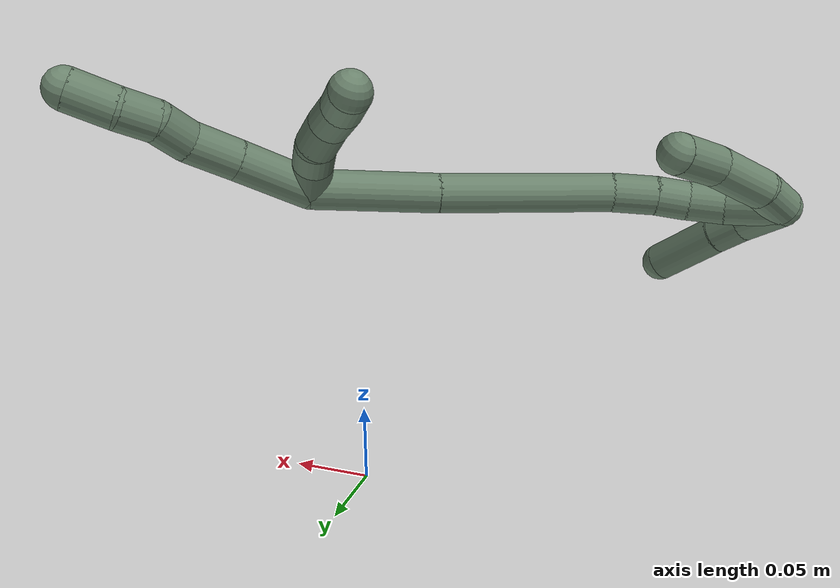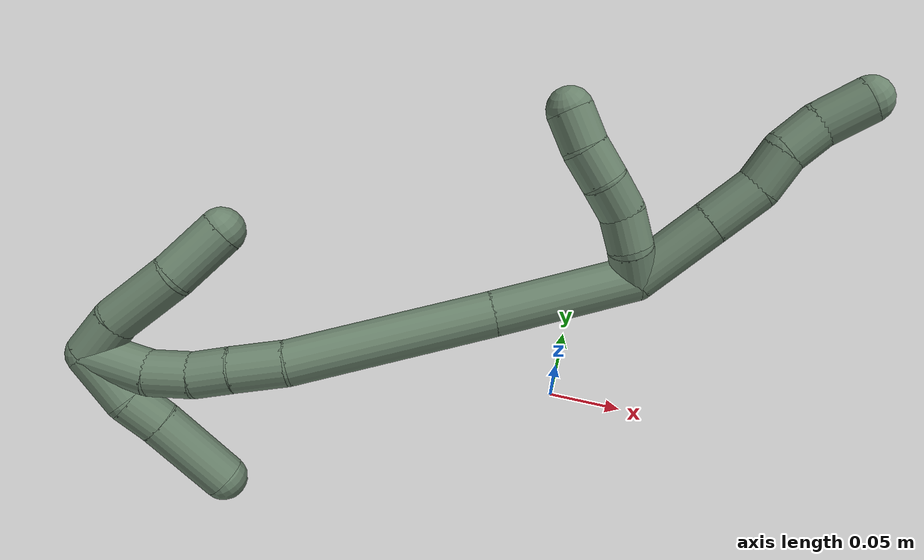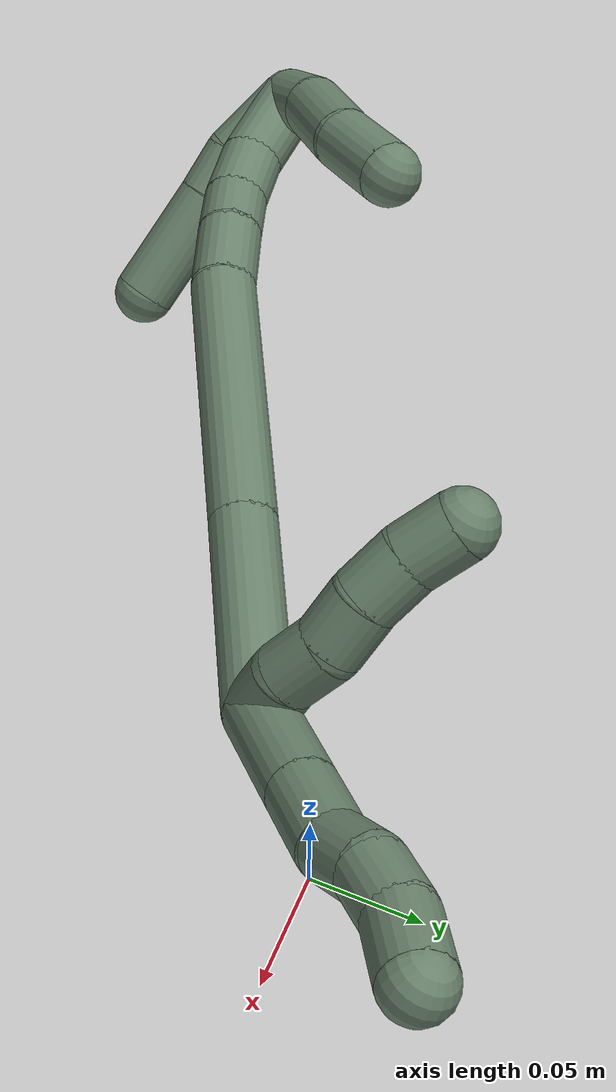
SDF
<sdf version="1.7">
 <world name="default">
  <model name="17">
   <static>0</static>
   <link name="17">
    <collision name="collision-cylinder-e_1_2_8">
     <pose>0.022762 -0.004782 0.006853 0.609284 1.21894 0.432169</pose>
     <geometry><cylinder><radius>0.0125</radius><length>0.048494</length></cylinder></geometry>
     <surface>
      <friction><ode><mu>1.16</mu><mu2>1.16</mu2><slip1>0</slip1><slip2>0</slip2></ode></friction>
      <contact><ode><kp>1e+06</kp><kd>1</kd><max_vel>0</max_vel><min_depth>0.001</min_depth></ode></contact>
     </surface>
    </collision>
    <visual name="visual-cylinder-e_1_2_8">
     <pose>0.022762 -0.004782 0.006853 0.609284 1.21894 0.432169</pose>
     <geometry><cylinder><radius>0.0125</radius><length>0.048494</length></cylinder></geometry>
     <material><ambient>0.415686 0.509804 0.423529 1</ambient></material>
    </visual>
    <collision name="collision-cylinder-e_2_8_9">
     <pose>0.059754 -0.012398 0.017864 0.59805 1.23092 0.429227</pose>
     <geometry><cylinder><radius>0.0125</radius><length>0.030189</length></cylinder></geometry>
     <surface>
      <friction><ode><mu>1.16</mu><mu2>1.16</mu2><slip1>0</slip1><slip2>0</slip2></ode></friction>
      <contact><ode><kp>1e+06</kp><kd>1</kd><max_vel>0</max_vel><min_depth>0.001</min_depth></ode></contact>
     </surface>
    </collision>
    <visual name="visual-cylinder-e_2_8_9">
     <pose>0.059754 -0.012398 0.017864 0.59805 1.23092 0.429227</pose>
     <geometry><cylinder><radius>0.0125</radius><length>0.030189</length></cylinder></geometry>
     <material><ambient>0.415686 0.509804 0.423529 1</ambient></material>
    </visual>
    <collision name="collision-cylinder-e_3_9_10">
     <pose>0.083251 -0.015956 0.028121 0.118318 0.985552 0.063585</pose>
     <geometry><cylinder><radius>0.0125</radius><length>0.022232</length></cylinder></geometry>
     <surface>
      <friction><ode><mu>1.16</mu><mu2>1.16</mu2><slip1>0</slip1><slip2>0</slip2></ode></friction>
      <contact><ode><kp>1e+06</kp><kd>1</kd><max_vel>0</max_vel><min_depth>0.001</min_depth></ode></contact>
     </surface>
    </collision>
    <visual name="visual-cylinder-e_3_9_10">
     <pose>0.083251 -0.015956 0.028121 0.118318 0.985552 0.063585</pose>
     <geometry><cylinder><radius>0.0125</radius><length>0.022232</length></cylinder></geometry>
     <material><ambient>0.415686 0.509804 0.423529 1</ambient></material>
    </visual>
    <collision name="collision-cylinder-e_4_10_11">
     <pose>0.102961 -0.018034 0.037001 0.45262 1.28273 0.340519</pose>
     <geometry><cylinder><radius>0.0125</radius><length>0.021786</length></cylinder></geometry>
     <surface>
      <friction><ode><mu>1.16</mu><mu2>1.16</mu2><slip1>0</slip1><slip2>0</slip2></ode></friction>
      <contact><ode><kp>1e+06</kp><kd>1</kd><max_vel>0</max_vel><min_depth>0.001</min_depth></ode></contact>
     </surface>
    </collision>
    <visual name="visual-cylinder-e_4_10_11">
     <pose>0.102961 -0.018034 0.037001 0.45262 1.28273 0.340519</pose>
     <geometry><cylinder><radius>0.0125</radius><length>0.021786</length></cylinder></geometry>
     <material><ambient>0.415686 0.509804 0.423529 1</ambient></material>
    </visual>
    <collision name="collision-cylinder-e_5_11_6">
     <pose>0.126082 -0.023953 0.041968 1.12463 1.19094 0.807046</pose>
     <geometry><cylinder><radius>0.0125</radius><length>0.027299</length></cylinder></geometry>
     <surface>
      <friction><ode><mu>1.16</mu><mu2>1.16</mu2><slip1>0</slip1><slip2>0</slip2></ode></friction>
      <contact><ode><kp>1e+06</kp><kd>1</kd><max_vel>0</max_vel><min_depth>0.001</min_depth></ode></contact>
     </surface>
    </collision>
    <visual name="visual-cylinder-e_5_11_6">
     <pose>0.126082 -0.023953 0.041968 1.12463 1.19094 0.807046</pose>
     <geometry><cylinder><radius>0.0125</radius><length>0.027299</length></cylinder></geometry>
     <material><ambient>0.415686 0.509804 0.423529 1</ambient></material>
    </visual>
    <collision name="collision-cylinder-e_1_2_12">
     <pose>0.001316 -0.000109 0.009912 0.010992 0.132029 0.000727</pose>
     <geometry><cylinder><radius>0.0125</radius><length>0.02</length></cylinder></geometry>
     <surface>
      <friction><ode><mu>1.16</mu><mu2>1.16</mu2><slip1>0</slip1><slip2>0</slip2></ode></friction>
      <contact><ode><kp>1e+06</kp><kd>1</kd><max_vel>0</max_vel><min_depth>0.001</min_depth></ode></contact>
     </surface>
    </collision>
    <visual name="visual-cylinder-e_1_2_12">
     <pose>0.001316 -0.000109 0.009912 0.010992 0.132029 0.000727</pose>
     <geometry><cylinder><radius>0.0125</radius><length>0.02</length></cylinder></geometry>
     <material><ambient>0.415686 0.509804 0.423529 1</ambient></material>
    </visual>
    <collision name="collision-cylinder-e_2_12_13">
     <pose>0.004546 0.002609 0.029224 -0.292175 0.192535 -0.028415</pose>
     <geometry><cylinder><radius>0.0125</radius><length>0.02</length></cylinder></geometry>
     <surface>
      <friction><ode><mu>1.16</mu><mu2>1.16</mu2><slip1>0</slip1><slip2>0</slip2></ode></friction>
      <contact><ode><kp>1e+06</kp><kd>1</kd><max_vel>0</max_vel><min_depth>0.001</min_depth></ode></contact>
     </surface>
    </collision>
    <visual name="visual-cylinder-e_2_12_13">
     <pose>0.004546 0.002609 0.029224 -0.292175 0.192535 -0.028415</pose>
     <geometry><cylinder><radius>0.0125</radius><length>0.02</length></cylinder></geometry>
     <material><ambient>0.415686 0.509804 0.423529 1</ambient></material>
    </visual>
    <collision name="collision-cylinder-e_3_13_14">
     <pose>0.005467 0.007705 0.048312 -0.229997 -0.099469 0.011499</pose>
     <geometry><cylinder><radius>0.0125</radius><length>0.02</length></cylinder></geometry>
     <surface>
      <friction><ode><mu>1.16</mu><mu2>1.16</mu2><slip1>0</slip1><slip2>0</slip2></ode></friction>
      <contact><ode><kp>1e+06</kp><kd>1</kd><max_vel>0</max_vel><min_depth>0.001</min_depth></ode></contact>
     </surface>
    </collision>
    <visual name="visual-cylinder-e_3_13_14">
     <pose>0.005467 0.007705 0.048312 -0.229997 -0.099469 0.011499</pose>
     <geometry><cylinder><radius>0.0125</radius><length>0.02</length></cylinder></geometry>
     <material><ambient>0.415686 0.509804 0.423529 1</ambient></material>
    </visual>
    <collision name="collision-cylinder-e_4_14_15">
     <pose>0.003908 0.014093 0.067095 -0.425334 -0.056633 0.012232</pose>
     <geometry><cylinder><radius>0.0125</radius><length>0.02</length></cylinder></geometry>
     <surface>
      <friction><ode><mu>1.16</mu><mu2>1.16</mu2><slip1>0</slip1><slip2>0</slip2></ode></friction>
      <contact><ode><kp>1e+06</kp><kd>1</kd><max_vel>0</max_vel><min_depth>0.001</min_depth></ode></contact>
     </surface>
    </collision>
    <visual name="visual-cylinder-e_4_14_15">
     <pose>0.003908 0.014093 0.067095 -0.425334 -0.056633 0.012232</pose>
     <geometry><cylinder><radius>0.0125</radius><length>0.02</length></cylinder></geometry>
     <material><ambient>0.415686 0.509804 0.423529 1</ambient></material>
    </visual>
    <collision name="collision-cylinder-e_5_15_5">
     <pose>0.004494 0.022927 0.084932 -0.494568 0.115452 -0.029176</pose>
     <geometry><cylinder><radius>0.0125</radius><length>0.02</length></cylinder></geometry>
     <surface>
      <friction><ode><mu>1.16</mu><mu2>1.16</mu2><slip1>0</slip1><slip2>0</slip2></ode></friction>
      <contact><ode><kp>1e+06</kp><kd>1</kd><max_vel>0</max_vel><min_depth>0.001</min_depth></ode></contact>
     </surface>
    </collision>
    <visual name="visual-cylinder-e_5_15_5">
     <pose>0.004494 0.022927 0.084932 -0.494568 0.115452 -0.029176</pose>
     <geometry><cylinder><radius>0.0125</radius><length>0.02</length></cylinder></geometry>
     <material><ambient>0.415686 0.509804 0.423529 1</ambient></material>
    </visual>
    <collision name="collision-cylinder-e_1_2_16">
     <pose>-0.03784 0.009401 0.007332 -0.908429 -1.26559 0.687736</pose>
     <geometry><cylinder><radius>0.0125</radius><length>0.079347</length></cylinder></geometry>
     <surface>
      <friction><ode><mu>1.16</mu><mu2>1.16</mu2><slip1>0</slip1><slip2>0</slip2></ode></friction>
      <contact><ode><kp>1e+06</kp><kd>1</kd><max_vel>0</max_vel><min_depth>0.001</min_depth></ode></contact>
     </surface>
    </collision>
    <visual name="visual-cylinder-e_1_2_16">
     <pose>-0.03784 0.009401 0.007332 -0.908429 -1.26559 0.687736</pose>
     <geometry><cylinder><radius>0.0125</radius><length>0.079347</length></cylinder></geometry>
     <material><ambient>0.415686 0.509804 0.423529 1</ambient></material>
    </visual>
    <collision name="collision-cylinder-e_2_16_17">
     <pose>-0.128907 0.030835 0.026536 -0.792152 -1.26327 0.593805</pose>
     <geometry><cylinder><radius>0.0125</radius><length>0.111693</length></cylinder></geometry>
     <surface>
      <friction><ode><mu>1.16</mu><mu2>1.16</mu2><slip1>0</slip1><slip2>0</slip2></ode></friction>
      <contact><ode><kp>1e+06</kp><kd>1</kd><max_vel>0</max_vel><min_depth>0.001</min_depth></ode></contact>
     </surface>
    </collision>
    <visual name="visual-cylinder-e_2_16_17">
     <pose>-0.128907 0.030835 0.026536 -0.792152 -1.26327 0.593805</pose>
     <geometry><cylinder><radius>0.0125</radius><length>0.111693</length></cylinder></geometry>
     <material><ambient>0.415686 0.509804 0.423529 1</ambient></material>
    </visual>
    <collision name="collision-cylinder-e_3_17_18">
     <pose>-0.195155 0.048038 0.041854 -0.982771 -1.12566 0.651237</pose>
     <geometry><cylinder><radius>0.0125</radius><length>0.028855</length></cylinder></geometry>
     <surface>
      <friction><ode><mu>1.16</mu><mu2>1.16</mu2><slip1>0</slip1><slip2>0</slip2></ode></friction>
      <contact><ode><kp>1e+06</kp><kd>1</kd><max_vel>0</max_vel><min_depth>0.001</min_depth></ode></contact>
     </surface>
    </collision>
    <visual name="visual-cylinder-e_3_17_18">
     <pose>-0.195155 0.048038 0.041854 -0.982771 -1.12566 0.651237</pose>
     <geometry><cylinder><radius>0.0125</radius><length>0.028855</length></cylinder></geometry>
     <material><ambient>0.415686 0.509804 0.423529 1</ambient></material>
    </visual>
    <collision name="collision-cylinder-e_4_18_19">
     <pose>-0.2176 0.057589 0.047119 -1.17748 -1.10441 0.780623</pose>
     <geometry><cylinder><radius>0.0125</radius><length>0.021101</length></cylinder></geometry>
     <surface>
      <friction><ode><mu>1.16</mu><mu2>1.16</mu2><slip1>0</slip1><slip2>0</slip2></ode></friction>
      <contact><ode><kp>1e+06</kp><kd>1</kd><max_vel>0</max_vel><min_depth>0.001</min_depth></ode></contact>
     </surface>
    </collision>
    <visual name="visual-cylinder-e_4_18_19">
     <pose>-0.2176 0.057589 0.047119 -1.17748 -1.10441 0.780623</pose>
     <geometry><cylinder><radius>0.0125</radius><length>0.021101</length></cylinder></geometry>
     <material><ambient>0.415686 0.509804 0.423529 1</ambient></material>
    </visual>
    <collision name="collision-cylinder-e_5_19_20">
     <pose>-0.236736 0.067946 0.052719 -1.00647 -0.941396 0.54625</pose>
     <geometry><cylinder><radius>0.0125</radius><length>0.024028</length></cylinder></geometry>
     <surface>
      <friction><ode><mu>1.16</mu><mu2>1.16</mu2><slip1>0</slip1><slip2>0</slip2></ode></friction>
      <contact><ode><kp>1e+06</kp><kd>1</kd><max_vel>0</max_vel><min_depth>0.001</min_depth></ode></contact>
     </surface>
    </collision>
    <visual name="visual-cylinder-e_5_19_20">
     <pose>-0.236736 0.067946 0.052719 -1.00647 -0.941396 0.54625</pose>
     <geometry><cylinder><radius>0.0125</radius><length>0.024028</length></cylinder></geometry>
     <material><ambient>0.415686 0.509804 0.423529 1</ambient></material>
    </visual>
    <collision name="collision-cylinder-e_6_20_1">
     <pose>-0.257776 0.084045 0.065163 -0.863061 -0.704645 0.335419</pose>
     <geometry><cylinder><radius>0.0125</radius><length>0.034975</length></cylinder></geometry>
     <surface>
      <friction><ode><mu>1.16</mu><mu2>1.16</mu2><slip1>0</slip1><slip2>0</slip2></ode></friction>
      <contact><ode><kp>1e+06</kp><kd>1</kd><max_vel>0</max_vel><min_depth>0.001</min_depth></ode></contact>
     </surface>
    </collision>
    <visual name="visual-cylinder-e_6_20_1">
     <pose>-0.257776 0.084045 0.065163 -0.863061 -0.704645 0.335419</pose>
     <geometry><cylinder><radius>0.0125</radius><length>0.034975</length></cylinder></geometry>
     <material><ambient>0.415686 0.509804 0.423529 1</ambient></material>
    </visual>
    <collision name="collision-cylinder-e_1_1_21">
     <pose>-0.258056 0.092301 0.079416 0.322395 1.08062 0.194466</pose>
     <geometry><cylinder><radius>0.0125</radius><length>0.025044</length></cylinder></geometry>
     <surface>
      <friction><ode><mu>1.16</mu><mu2>1.16</mu2><slip1>0</slip1><slip2>0</slip2></ode></friction>
      <contact><ode><kp>1e+06</kp><kd>1</kd><max_vel>0</max_vel><min_depth>0.001</min_depth></ode></contact>
     </surface>
    </collision>
    <visual name="visual-cylinder-e_1_1_21">
     <pose>-0.258056 0.092301 0.079416 0.322395 1.08062 0.194466</pose>
     <geometry><cylinder><radius>0.0125</radius><length>0.025044</length></cylinder></geometry>
     <material><ambient>0.415686 0.509804 0.423529 1</ambient></material>
    </visual>
    <collision name="collision-cylinder-e_2_21_22">
     <pose>-0.227862 0.086035 0.090221 0.700759 1.22858 0.504548</pose>
     <geometry><cylinder><radius>0.0125</radius><length>0.040651</length></cylinder></geometry>
     <surface>
      <friction><ode><mu>1.16</mu><mu2>1.16</mu2><slip1>0</slip1><slip2>0</slip2></ode></friction>
      <contact><ode><kp>1e+06</kp><kd>1</kd><max_vel>0</max_vel><min_depth>0.001</min_depth></ode></contact>
     </surface>
    </collision>
    <visual name="visual-cylinder-e_2_21_22">
     <pose>-0.227862 0.086035 0.090221 0.700759 1.22858 0.504548</pose>
     <geometry><cylinder><radius>0.0125</radius><length>0.040651</length></cylinder></geometry>
     <material><ambient>0.415686 0.509804 0.423529 1</ambient></material>
    </visual>
    <collision name="collision-cylinder-e_3_22_4">
     <pose>-0.192094 0.081818 0.099667 -0.042786 1.32126 -0.033252</pose>
     <geometry><cylinder><radius>0.0125</radius><length>0.034305</length></cylinder></geometry>
     <surface>
      <friction><ode><mu>1.16</mu><mu2>1.16</mu2><slip1>0</slip1><slip2>0</slip2></ode></friction>
      <contact><ode><kp>1e+06</kp><kd>1</kd><max_vel>0</max_vel><min_depth>0.001</min_depth></ode></contact>
     </surface>
    </collision>
    <visual name="visual-cylinder-e_3_22_4">
     <pose>-0.192094 0.081818 0.099667 -0.042786 1.32126 -0.033252</pose>
     <geometry><cylinder><radius>0.0125</radius><length>0.034305</length></cylinder></geometry>
     <material><ambient>0.415686 0.509804 0.423529 1</ambient></material>
    </visual>
    <collision name="collision-cylinder-e_1_1_23">
     <pose>-0.267154 0.086545 0.059948 2.6392 0.122525 0.469259</pose>
     <geometry><cylinder><radius>0.0125</radius><length>0.031905</length></cylinder></geometry>
     <surface>
      <friction><ode><mu>1.16</mu><mu2>1.16</mu2><slip1>0</slip1><slip2>0</slip2></ode></friction>
      <contact><ode><kp>1e+06</kp><kd>1</kd><max_vel>0</max_vel><min_depth>0.001</min_depth></ode></contact>
     </surface>
    </collision>
    <visual name="visual-cylinder-e_1_1_23">
     <pose>-0.267154 0.086545 0.059948 2.6392 0.122525 0.469259</pose>
     <geometry><cylinder><radius>0.0125</radius><length>0.031905</length></cylinder></geometry>
     <material><ambient>0.415686 0.509804 0.423529 1</ambient></material>
    </visual>
    <collision name="collision-cylinder-e_2_23_24">
     <pose>-0.261708 0.075393 0.036935 2.77313 0.342819 1.49717</pose>
     <geometry><cylinder><radius>0.0125</radius><length>0.020799</length></cylinder></geometry>
     <surface>
      <friction><ode><mu>1.16</mu><mu2>1.16</mu2><slip1>0</slip1><slip2>0</slip2></ode></friction>
      <contact><ode><kp>1e+06</kp><kd>1</kd><max_vel>0</max_vel><min_depth>0.001</min_depth></ode></contact>
     </surface>
    </collision>
    <visual name="visual-cylinder-e_2_23_24">
     <pose>-0.261708 0.075393 0.036935 2.77313 0.342819 1.49717</pose>
     <geometry><cylinder><radius>0.0125</radius><length>0.020799</length></cylinder></geometry>
     <material><ambient>0.415686 0.509804 0.423529 1</ambient></material>
    </visual>
    <collision name="collision-cylinder-e_3_24_3">
     <pose>-0.251918 0.063744 0.006499 2.7773 0.269426 1.26876</pose>
     <geometry><cylinder><radius>0.0125</radius><length>0.047297</length></cylinder></geometry>
     <surface>
      <friction><ode><mu>1.16</mu><mu2>1.16</mu2><slip1>0</slip1><slip2>0</slip2></ode></friction>
      <contact><ode><kp>1e+06</kp><kd>1</kd><max_vel>0</max_vel><min_depth>0.001</min_depth></ode></contact>
     </surface>
    </collision>
    <visual name="visual-cylinder-e_3_24_3">
     <pose>-0.251918 0.063744 0.006499 2.7773 0.269426 1.26876</pose>
     <geometry><cylinder><radius>0.0125</radius><length>0.047297</length></cylinder></geometry>
     <material><ambient>0.415686 0.509804 0.423529 1</ambient></material>
    </visual>
    <collision name="collision-sphere-3">
     <pose>-0.245623 0.055622 -0.0148 0 -0 0</pose>
     <geometry><sphere><radius>0.0125</radius></sphere></geometry>
     <surface>
      <friction><ode><mu>1.16</mu><mu2>1.16</mu2><slip1>0</slip1><slip2>0</slip2></ode></friction>
      <contact><ode><kp>1e+06</kp><kd>1</kd><max_vel>0</max_vel><min_depth>0.001</min_depth></ode></contact>
     </surface>
    </collision>
    <visual name="visual-sphere-3">
     <pose>-0.245623 0.055622 -0.0148 0 -0 0</pose>
     <geometry><sphere><radius>0.0125</radius></sphere></geometry>
     <material><ambient>0.415686 0.509804 0.423529 1</ambient></material>
    </visual>
    <collision name="collision-sphere-24">
     <pose>-0.258213 0.071865 0.027798 0 -0 0</pose>
     <geometry><sphere><radius>0.0125</radius></sphere></geometry>
     <surface>
      <friction><ode><mu>1.16</mu><mu2>1.16</mu2><slip1>0</slip1><slip2>0</slip2></ode></friction>
      <contact><ode><kp>1e+06</kp><kd>1</kd><max_vel>0</max_vel><min_depth>0.001</min_depth></ode></contact>
     </surface>
    </collision>
    <visual name="visual-sphere-24">
     <pose>-0.258213 0.071865 0.027798 0 -0 0</pose>
     <geometry><sphere><radius>0.0125</radius></sphere></geometry>
     <material><ambient>0.415686 0.509804 0.423529 1</ambient></material>
    </visual>
    <collision name="collision-sphere-23">
     <pose>-0.265204 0.078921 0.046072 0 -0 0</pose>
     <geometry><sphere><radius>0.0125</radius></sphere></geometry>
     <surface>
      <friction><ode><mu>1.16</mu><mu2>1.16</mu2><slip1>0</slip1><slip2>0</slip2></ode></friction>
      <contact><ode><kp>1e+06</kp><kd>1</kd><max_vel>0</max_vel><min_depth>0.001</min_depth></ode></contact>
     </surface>
    </collision>
    <visual name="visual-sphere-23">
     <pose>-0.265204 0.078921 0.046072 0 -0 0</pose>
     <geometry><sphere><radius>0.0125</radius></sphere></geometry>
     <material><ambient>0.415686 0.509804 0.423529 1</ambient></material>
    </visual>
    <collision name="collision-sphere-4">
     <pose>-0.175472 0.081999 0.103899 0 -0 0</pose>
     <geometry><sphere><radius>0.0125</radius></sphere></geometry>
     <surface>
      <friction><ode><mu>1.16</mu><mu2>1.16</mu2><slip1>0</slip1><slip2>0</slip2></ode></friction>
      <contact><ode><kp>1e+06</kp><kd>1</kd><max_vel>0</max_vel><min_depth>0.001</min_depth></ode></contact>
     </surface>
    </collision>
    <visual name="visual-sphere-4">
     <pose>-0.175472 0.081999 0.103899 0 -0 0</pose>
     <geometry><sphere><radius>0.0125</radius></sphere></geometry>
     <material><ambient>0.415686 0.509804 0.423529 1</ambient></material>
    </visual>
    <collision name="collision-sphere-22">
     <pose>-0.208715 0.081637 0.095435 0 -0 0</pose>
     <geometry><sphere><radius>0.0125</radius></sphere></geometry>
     <surface>
      <friction><ode><mu>1.16</mu><mu2>1.16</mu2><slip1>0</slip1><slip2>0</slip2></ode></friction>
      <contact><ode><kp>1e+06</kp><kd>1</kd><max_vel>0</max_vel><min_depth>0.001</min_depth></ode></contact>
     </surface>
    </collision>
    <visual name="visual-sphere-22">
     <pose>-0.208715 0.081637 0.095435 0 -0 0</pose>
     <geometry><sphere><radius>0.0125</radius></sphere></geometry>
     <material><ambient>0.415686 0.509804 0.423529 1</ambient></material>
    </visual>
    <collision name="collision-sphere-21">
     <pose>-0.247008 0.090433 0.085008 0 -0 0</pose>
     <geometry><sphere><radius>0.0125</radius></sphere></geometry>
     <surface>
      <friction><ode><mu>1.16</mu><mu2>1.16</mu2><slip1>0</slip1><slip2>0</slip2></ode></friction>
      <contact><ode><kp>1e+06</kp><kd>1</kd><max_vel>0</max_vel><min_depth>0.001</min_depth></ode></contact>
     </surface>
    </collision>
    <visual name="visual-sphere-21">
     <pose>-0.247008 0.090433 0.085008 0 -0 0</pose>
     <geometry><sphere><radius>0.0125</radius></sphere></geometry>
     <material><ambient>0.415686 0.509804 0.423529 1</ambient></material>
    </visual>
    <collision name="collision-sphere-1">
     <pose>-0.269103 0.094168 0.073825 0 -0 0</pose>
     <geometry><sphere><radius>0.0125</radius></sphere></geometry>
     <surface>
      <friction><ode><mu>1.16</mu><mu2>1.16</mu2><slip1>0</slip1><slip2>0</slip2></ode></friction>
      <contact><ode><kp>1e+06</kp><kd>1</kd><max_vel>0</max_vel><min_depth>0.001</min_depth></ode></contact>
     </surface>
    </collision>
    <visual name="visual-sphere-1">
     <pose>-0.269103 0.094168 0.073825 0 -0 0</pose>
     <geometry><sphere><radius>0.0125</radius></sphere></geometry>
     <material><ambient>0.415686 0.509804 0.423529 1</ambient></material>
    </visual>
    <collision name="collision-sphere-6">
     <pose>0.138759 -0.028519 0.044152 0 -0 0</pose>
     <geometry><sphere><radius>0.0125</radius></sphere></geometry>
     <surface>
      <friction><ode><mu>1.16</mu><mu2>1.16</mu2><slip1>0</slip1><slip2>0</slip2></ode></friction>
      <contact><ode><kp>1e+06</kp><kd>1</kd><max_vel>0</max_vel><min_depth>0.001</min_depth></ode></contact>
     </surface>
    </collision>
    <visual name="visual-sphere-6">
     <pose>0.138759 -0.028519 0.044152 0 -0 0</pose>
     <geometry><sphere><radius>0.0125</radius></sphere></geometry>
     <material><ambient>0.415686 0.509804 0.423529 1</ambient></material>
    </visual>
    <collision name="collision-sphere-11">
     <pose>0.113405 -0.019387 0.039784 0 -0 0</pose>
     <geometry><sphere><radius>0.0125</radius></sphere></geometry>
     <surface>
      <friction><ode><mu>1.16</mu><mu2>1.16</mu2><slip1>0</slip1><slip2>0</slip2></ode></friction>
      <contact><ode><kp>1e+06</kp><kd>1</kd><max_vel>0</max_vel><min_depth>0.001</min_depth></ode></contact>
     </surface>
    </collision>
    <visual name="visual-sphere-11">
     <pose>0.113405 -0.019387 0.039784 0 -0 0</pose>
     <geometry><sphere><radius>0.0125</radius></sphere></geometry>
     <material><ambient>0.415686 0.509804 0.423529 1</ambient></material>
    </visual>
    <collision name="collision-sphere-10">
     <pose>0.092517 -0.016681 0.034218 0 -0 0</pose>
     <geometry><sphere><radius>0.0125</radius></sphere></geometry>
     <surface>
      <friction><ode><mu>1.16</mu><mu2>1.16</mu2><slip1>0</slip1><slip2>0</slip2></ode></friction>
      <contact><ode><kp>1e+06</kp><kd>1</kd><max_vel>0</max_vel><min_depth>0.001</min_depth></ode></contact>
     </surface>
    </collision>
    <visual name="visual-sphere-10">
     <pose>0.092517 -0.016681 0.034218 0 -0 0</pose>
     <geometry><sphere><radius>0.0125</radius></sphere></geometry>
     <material><ambient>0.415686 0.509804 0.423529 1</ambient></material>
    </visual>
    <collision name="collision-sphere-9">
     <pose>0.073985 -0.015231 0.022023 0 -0 0</pose>
     <geometry><sphere><radius>0.0125</radius></sphere></geometry>
     <surface>
      <friction><ode><mu>1.16</mu><mu2>1.16</mu2><slip1>0</slip1><slip2>0</slip2></ode></friction>
      <contact><ode><kp>1e+06</kp><kd>1</kd><max_vel>0</max_vel><min_depth>0.001</min_depth></ode></contact>
     </surface>
    </collision>
    <visual name="visual-sphere-9">
     <pose>0.073985 -0.015231 0.022023 0 -0 0</pose>
     <geometry><sphere><radius>0.0125</radius></sphere></geometry>
     <material><ambient>0.415686 0.509804 0.423529 1</ambient></material>
    </visual>
    <collision name="collision-sphere-2">
     <geometry><sphere><radius>0.0125</radius></sphere></geometry>
     <surface>
      <friction><ode><mu>1.16</mu><mu2>1.16</mu2><slip1>0</slip1><slip2>0</slip2></ode></friction>
      <contact><ode><kp>1e+06</kp><kd>1</kd><max_vel>0</max_vel><min_depth>0.001</min_depth></ode></contact>
     </surface>
    </collision>
    <visual name="visual-sphere-2">
     <geometry><sphere><radius>0.0125</radius></sphere></geometry>
     <material><ambient>0.415686 0.509804 0.423529 1</ambient></material>
    </visual>
    <collision name="collision-sphere-19">
     <pose>-0.227024 0.061971 0.048937 0 -0 0</pose>
     <geometry><sphere><radius>0.0125</radius></sphere></geometry>
     <surface>
      <friction><ode><mu>1.16</mu><mu2>1.16</mu2><slip1>0</slip1><slip2>0</slip2></ode></friction>
      <contact><ode><kp>1e+06</kp><kd>1</kd><max_vel>0</max_vel><min_depth>0.001</min_depth></ode></contact>
     </surface>
    </collision>
    <visual name="visual-sphere-19">
     <pose>-0.227024 0.061971 0.048937 0 -0 0</pose>
     <geometry><sphere><radius>0.0125</radius></sphere></geometry>
     <material><ambient>0.415686 0.509804 0.423529 1</ambient></material>
    </visual>
    <collision name="collision-sphere-8">
     <pose>0.045523 -0.009565 0.013706 0 -0 0</pose>
     <geometry><sphere><radius>0.0125</radius></sphere></geometry>
     <surface>
      <friction><ode><mu>1.16</mu><mu2>1.16</mu2><slip1>0</slip1><slip2>0</slip2></ode></friction>
      <contact><ode><kp>1e+06</kp><kd>1</kd><max_vel>0</max_vel><min_depth>0.001</min_depth></ode></contact>
     </surface>
    </collision>
    <visual name="visual-sphere-8">
     <pose>0.045523 -0.009565 0.013706 0 -0 0</pose>
     <geometry><sphere><radius>0.0125</radius></sphere></geometry>
     <material><ambient>0.415686 0.509804 0.423529 1</ambient></material>
    </visual>
    <collision name="collision-sphere-12">
     <pose>0.002633 -0.000218 0.019825 0 -0 0</pose>
     <geometry><sphere><radius>0.0125</radius></sphere></geometry>
     <surface>
      <friction><ode><mu>1.16</mu><mu2>1.16</mu2><slip1>0</slip1><slip2>0</slip2></ode></friction>
      <contact><ode><kp>1e+06</kp><kd>1</kd><max_vel>0</max_vel><min_depth>0.001</min_depth></ode></contact>
     </surface>
    </collision>
    <visual name="visual-sphere-12">
     <pose>0.002633 -0.000218 0.019825 0 -0 0</pose>
     <geometry><sphere><radius>0.0125</radius></sphere></geometry>
     <material><ambient>0.415686 0.509804 0.423529 1</ambient></material>
    </visual>
    <collision name="collision-sphere-13">
     <pose>0.00646 0.005436 0.038623 0 -0 0</pose>
     <geometry><sphere><radius>0.0125</radius></sphere></geometry>
     <surface>
      <friction><ode><mu>1.16</mu><mu2>1.16</mu2><slip1>0</slip1><slip2>0</slip2></ode></friction>
      <contact><ode><kp>1e+06</kp><kd>1</kd><max_vel>0</max_vel><min_depth>0.001</min_depth></ode></contact>
     </surface>
    </collision>
    <visual name="visual-sphere-13">
     <pose>0.00646 0.005436 0.038623 0 -0 0</pose>
     <geometry><sphere><radius>0.0125</radius></sphere></geometry>
     <material><ambient>0.415686 0.509804 0.423529 1</ambient></material>
    </visual>
    <collision name="collision-sphere-14">
     <pose>0.004474 0.009973 0.058 0 -0 0</pose>
     <geometry><sphere><radius>0.0125</radius></sphere></geometry>
     <surface>
      <friction><ode><mu>1.16</mu><mu2>1.16</mu2><slip1>0</slip1><slip2>0</slip2></ode></friction>
      <contact><ode><kp>1e+06</kp><kd>1</kd><max_vel>0</max_vel><min_depth>0.001</min_depth></ode></contact>
     </surface>
    </collision>
    <visual name="visual-sphere-14">
     <pose>0.004474 0.009973 0.058 0 -0 0</pose>
     <geometry><sphere><radius>0.0125</radius></sphere></geometry>
     <material><ambient>0.415686 0.509804 0.423529 1</ambient></material>
    </visual>
    <collision name="collision-sphere-15">
     <pose>0.003342 0.018213 0.076189 0 -0 0</pose>
     <geometry><sphere><radius>0.0125</radius></sphere></geometry>
     <surface>
      <friction><ode><mu>1.16</mu><mu2>1.16</mu2><slip1>0</slip1><slip2>0</slip2></ode></friction>
      <contact><ode><kp>1e+06</kp><kd>1</kd><max_vel>0</max_vel><min_depth>0.001</min_depth></ode></contact>
     </surface>
    </collision>
    <visual name="visual-sphere-15">
     <pose>0.003342 0.018213 0.076189 0 -0 0</pose>
     <geometry><sphere><radius>0.0125</radius></sphere></geometry>
     <material><ambient>0.415686 0.509804 0.423529 1</ambient></material>
    </visual>
    <collision name="collision-sphere-5">
     <pose>0.005646 0.027642 0.093675 0 -0 0</pose>
     <geometry><sphere><radius>0.0125</radius></sphere></geometry>
     <surface>
      <friction><ode><mu>1.16</mu><mu2>1.16</mu2><slip1>0</slip1><slip2>0</slip2></ode></friction>
      <contact><ode><kp>1e+06</kp><kd>1</kd><max_vel>0</max_vel><min_depth>0.001</min_depth></ode></contact>
     </surface>
    </collision>
    <visual name="visual-sphere-5">
     <pose>0.005646 0.027642 0.093675 0 -0 0</pose>
     <geometry><sphere><radius>0.0125</radius></sphere></geometry>
     <material><ambient>0.415686 0.509804 0.423529 1</ambient></material>
    </visual>
    <collision name="collision-sphere-16">
     <pose>-0.07568 0.018801 0.014663 0 -0 0</pose>
     <geometry><sphere><radius>0.0125</radius></sphere></geometry>
     <surface>
      <friction><ode><mu>1.16</mu><mu2>1.16</mu2><slip1>0</slip1><slip2>0</slip2></ode></friction>
      <contact><ode><kp>1e+06</kp><kd>1</kd><max_vel>0</max_vel><min_depth>0.001</min_depth></ode></contact>
     </surface>
    </collision>
    <visual name="visual-sphere-16">
     <pose>-0.07568 0.018801 0.014663 0 -0 0</pose>
     <geometry><sphere><radius>0.0125</radius></sphere></geometry>
     <material><ambient>0.415686 0.509804 0.423529 1</ambient></material>
    </visual>
    <collision name="collision-sphere-17">
     <pose>-0.182133 0.042869 0.038408 0 -0 0</pose>
     <geometry><sphere><radius>0.0125</radius></sphere></geometry>
     <surface>
      <friction><ode><mu>1.16</mu><mu2>1.16</mu2><slip1>0</slip1><slip2>0</slip2></ode></friction>
      <contact><ode><kp>1e+06</kp><kd>1</kd><max_vel>0</max_vel><min_depth>0.001</min_depth></ode></contact>
     </surface>
    </collision>
    <visual name="visual-sphere-17">
     <pose>-0.182133 0.042869 0.038408 0 -0 0</pose>
     <geometry><sphere><radius>0.0125</radius></sphere></geometry>
     <material><ambient>0.415686 0.509804 0.423529 1</ambient></material>
    </visual>
    <collision name="collision-sphere-18">
     <pose>-0.208176 0.053207 0.0453 0 -0 0</pose>
     <geometry><sphere><radius>0.0125</radius></sphere></geometry>
     <surface>
      <friction><ode><mu>1.16</mu><mu2>1.16</mu2><slip1>0</slip1><slip2>0</slip2></ode></friction>
      <contact><ode><kp>1e+06</kp><kd>1</kd><max_vel>0</max_vel><min_depth>0.001</min_depth></ode></contact>
     </surface>
    </collision>
    <visual name="visual-sphere-18">
     <pose>-0.208176 0.053207 0.0453 0 -0 0</pose>
     <geometry><sphere><radius>0.0125</radius></sphere></geometry>
     <material><ambient>0.415686 0.509804 0.423529 1</ambient></material>
    </visual>
    <collision name="collision-sphere-20">
     <pose>-0.246448 0.073922 0.056502 0 -0 0</pose>
     <geometry><sphere><radius>0.0125</radius></sphere></geometry>
     <surface>
      <friction><ode><mu>1.16</mu><mu2>1.16</mu2><slip1>0</slip1><slip2>0</slip2></ode></friction>
      <contact><ode><kp>1e+06</kp><kd>1</kd><max_vel>0</max_vel><min_depth>0.001</min_depth></ode></contact>
     </surface>
    </collision>
    <visual name="visual-sphere-20">
     <pose>-0.246448 0.073922 0.056502 0 -0 0</pose>
     <geometry><sphere><radius>0.0125</radius></sphere></geometry>
     <material><ambient>0.415686 0.509804 0.423529 1</ambient></material>
    </visual>
    <inertial>
     <pose>-0.106248 0.035013 0.03946 0 -0 0</pose>
     <mass>0.75</mass>
     <inertia>
      <ixx>0.000121</ixx>
      <ixy>0</ixy>
      <ixz>0</ixz>
      <iyy>0.000257</iyy>
      <iyz>0</iyz>
      <izz>0.000109</izz>
     </inertia>
    </inertial>
   </link>
   <pose>0.033394 -0.006428 0.191694 -0.511351 -0.122452 0.776604</pose>
  </model>
 </world>
</sdf>
